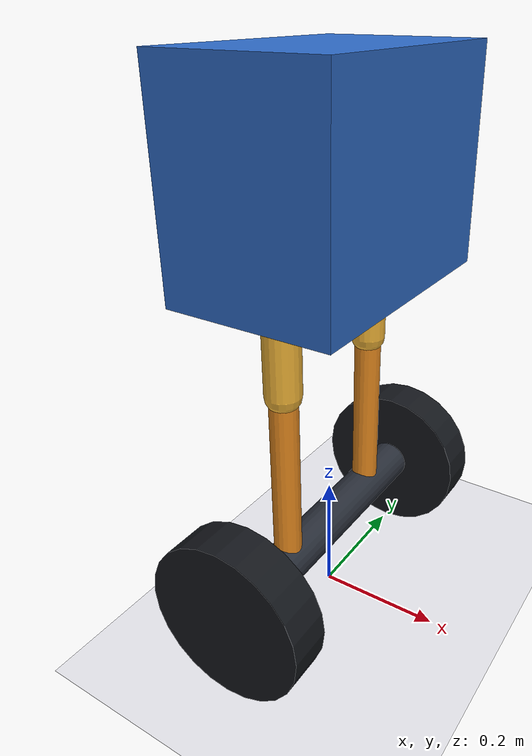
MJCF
<mujoco model="planar wheel-legged robot">
  <compiler angle="radian" inertiafromgeom="true"/>
  <option timestep="0.002" integrator="RK4" gravity="0 0 -9.81"/>

  <default>
    <joint armature="0.01" damping="0.05"/>
    <geom friction="0.8 0.005 0.0001" rgba="0.25 0.45 0.75 1"/>
  </default>

  <visual>
    <global offwidth="960" offheight="540"/>
    <headlight ambient="0.45 0.45 0.45" diffuse="0.75 0.75 0.75"/>
  </visual>

  <worldbody>
    <light pos="0 -3 4" dir="0 1 -1"/>
    <geom name="ground" type="plane" size="30 3 0.1" rgba="0.92 0.92 0.94 1"/>

    <body name="wheel_axle" pos="0 0 0.13">
      <joint name="base_x" type="slide" axis="1 0 0" damping="0.30"/>
      <geom name="axle" type="cylinder" size="0.035 0.22" euler="1.570796 0 0"
            mass="1.0" rgba="0.16 0.18 0.22 1" contype="0" conaffinity="0"/>
      <geom name="left_wheel" type="cylinder" pos="0 0.25 0" size="0.13 0.035"
            euler="1.570796 0 0" mass="1.5" rgba="0.08 0.09 0.11 1"
            contype="0" conaffinity="0"/>
      <geom name="right_wheel" type="cylinder" pos="0 -0.25 0" size="0.13 0.035"
            euler="1.570796 0 0" mass="1.5" rgba="0.08 0.09 0.11 1"
            contype="0" conaffinity="0"/>

      <body name="pitch_frame">
        <joint name="body_pitch" type="hinge" axis="0 1 0" damping="0.08"
               armature="0.02" range="-1.2 1.2"/>
        <geom name="left_lower_leg" type="capsule" fromto="0 0.12 0 0 0.12 0.39"
              size="0.022" mass="0.7" rgba="0.92 0.55 0.12 1" contype="0" conaffinity="0"/>
        <geom name="right_lower_leg" type="capsule" fromto="0 -0.12 0 0 -0.12 0.39"
              size="0.022" mass="0.7" rgba="0.92 0.55 0.12 1" contype="0" conaffinity="0"/>

        <body name="torso" pos="0 0 0.48">
          <joint name="leg_extension" type="slide" axis="0 0 1" range="-0.12 0.12"
                 damping="4.0" armature="0.05"/>
          <geom name="left_upper_leg" type="capsule" fromto="0 0.12 -0.18 0 0.12 0"
                size="0.028" mass="0.5" rgba="0.96 0.72 0.22 1" contype="0" conaffinity="0"/>
          <geom name="right_upper_leg" type="capsule" fromto="0 -0.12 -0.18 0 -0.12 0"
                size="0.028" mass="0.5" rgba="0.96 0.72 0.22 1" contype="0" conaffinity="0"/>
          <geom name="body" type="box" pos="0 0 0.11" size="0.13 0.20 0.16"
                mass="12.0" rgba="0.18 0.42 0.78 1" contype="0" conaffinity="0"/>
          <geom name="battery" type="box" pos="0 0 0.06" size="0.08 0.14 0.05"
                mass="1.0" rgba="0.10 0.13 0.18 1" contype="0" conaffinity="0"/>
          <site name="imu" pos="0 0 0.18" size="0.015" rgba="0.2 0.9 0.3 1"/>
        </body>
      </body>
    </body>
  </worldbody>

  <actuator>
    <motor name="wheel_force" joint="base_x" gear="1" ctrllimited="true"
           ctrlrange="-80 80"/>
    <motor name="leg_force" joint="leg_extension" gear="1" ctrllimited="true"
           ctrlrange="0 260"/>
  </actuator>

  <sensor>
    <jointpos name="pitch" joint="body_pitch"/>
    <jointvel name="pitch_rate" joint="body_pitch"/>
    <framepos name="body_position" objtype="body" objname="torso"/>
    <framelinvel name="body_velocity" objtype="body" objname="torso"/>
  </sensor>
</mujoco>
